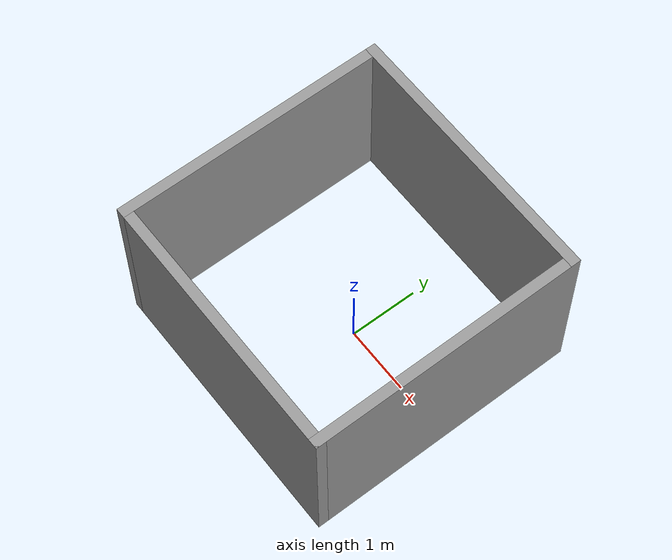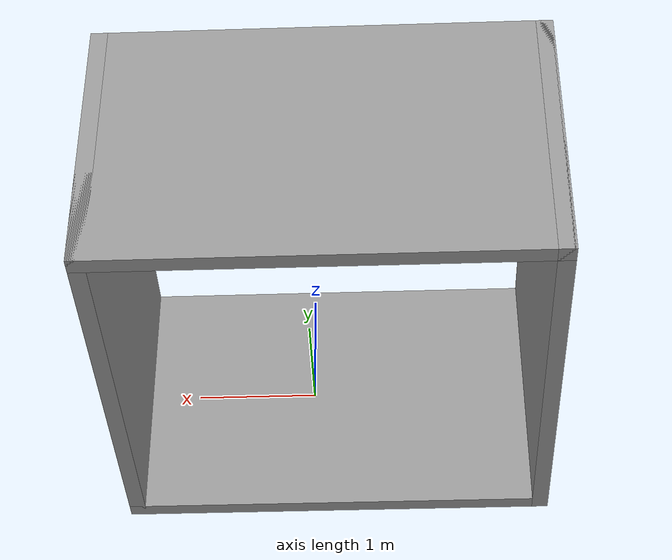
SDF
<?xml version='1.0'?>
<sdf version='1.7'>
  <model name='four_meter_walls'>
    <pose>-0.12825 -0.014 0 0 -0 0</pose>
    <link name='Wall_3'>
      <collision name='Wall_3_Collision'>
        <geometry>
          <box>
            <size>4 0.15 2.5</size>
          </box>
        </geometry>
        <pose>0 0 1.25 0 -0 0</pose>
      </collision>
      <visual name='Wall_3_Visual'>
        <pose>0 0 1.25 0 -0 0</pose>
        <geometry>
          <box>
            <size>4 0.15 2.5</size>
          </box>
        </geometry>
        <material>
          <script>
            <uri>file://media/materials/scripts/gazebo.material</uri>
            <name>Gazebo/Grey</name>
          </script>
          <ambient>1 1 1 1</ambient>
        </material>
        <meta>
          <layer>0</layer>
        </meta>
      </visual>
      <pose>-1.925 -0 0 0 -0 1.5708</pose>
    </link>
    <link name='Wall_7'>
      <collision name='Wall_7_Collision'>
        <geometry>
          <box>
            <size>4 0.15 2.5</size>
          </box>
        </geometry>
        <pose>0 0 1.25 0 -0 0</pose>
      </collision>
      <visual name='Wall_7_Visual'>
        <pose>0 0 1.25 0 -0 0</pose>
        <geometry>
          <box>
            <size>4 0.15 2.5</size>
          </box>
        </geometry>
        <material>
          <script>
            <uri>file://media/materials/scripts/gazebo.material</uri>
            <name>Gazebo/Grey</name>
          </script>
          <ambient>1 1 1 1</ambient>
        </material>
        <meta>
          <layer>0</layer>
        </meta>
      </visual>
      <pose>0 1.925 0 0 -0 0</pose>
    </link>
    <link name='Wall_8'>
      <collision name='Wall_8_Collision'>
        <geometry>
          <box>
            <size>4 0.15 2.5</size>
          </box>
        </geometry>
        <pose>0 0 1.25 0 -0 0</pose>
      </collision>
      <visual name='Wall_8_Visual'>
        <pose>0 0 1.25 0 -0 0</pose>
        <geometry>
          <box>
            <size>4 0.15 2.5</size>
          </box>
        </geometry>
        <material>
          <script>
            <uri>file://media/materials/scripts/gazebo.material</uri>
            <name>Gazebo/Grey</name>
          </script>
          <ambient>1 1 1 1</ambient>
        </material>
        <meta>
          <layer>0</layer>
        </meta>
      </visual>
      <pose>1.925 -0 0 0 -0 -1.5708</pose>
    </link>
    <link name='Wall_9'>
      <collision name='Wall_9_Collision'>
        <geometry>
          <box>
            <size>4 0.15 2.5</size>
          </box>
        </geometry>
        <pose>0 0 1.25 0 -0 0</pose>
      </collision>
      <visual name='Wall_9_Visual'>
        <pose>0 0 1.25 0 -0 0</pose>
        <geometry>
          <box>
            <size>4 0.15 2.5</size>
          </box>
        </geometry>
        <material>
          <script>
            <uri>file://media/materials/scripts/gazebo.material</uri>
            <name>Gazebo/Grey</name>
          </script>
          <ambient>1 1 1 1</ambient>
        </material>
        <meta>
          <layer>0</layer>
        </meta>
      </visual>
      <pose>0 -1.925 0 0 -0 3.14159</pose>
    </link>
    <static>1</static>
  </model>
</sdf>
